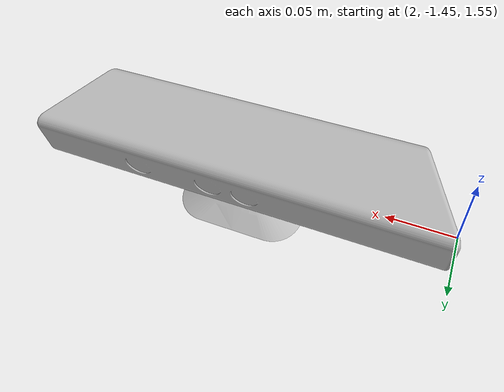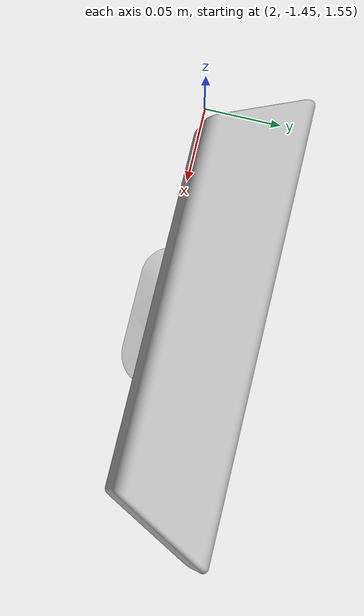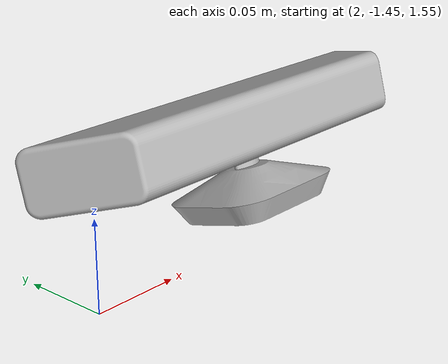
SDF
<?xml version="1.0" ?>
<sdf version="1.5">
  <model name="kinect">
    <pose>2.143572 -1.385330 1.598475 0 0.261799 1.570801</pose>
    <static>true</static>
    <link name="kinekt_link">
      <inertial>
        <mass>0.1</mass>
      </inertial>
      <collision name="collision">
        <geometry>
          <box>
            <size>0.073000 0.276000 0.072000</size>
          </box>
        </geometry>
      </collision>
      <visual name="visual">
        <geometry>
          <mesh>
            <uri>model://kinect/meshes/kinect.dae</uri>
          </mesh>
        </geometry>
      </visual>
      <sensor name="camera" type="depth">
        <update_rate>20</update_rate>
        <camera>
          <horizontal_fov>1.047198</horizontal_fov>
          <image>
            <width>640</width>
            <height>480</height>
            <format>R8G8B8</format>
          </image>
          <clip>
            <near>0.05</near>
            <far>3</far>
          </clip>
        </camera>
        <plugin name="camera_plugin" filename="libgazebo_ros_openni_kinect.so">
          <baseline>0.2</baseline>
          <alwaysOn>true</alwaysOn>
          <updateRate>0.0</updateRate>
          <cameraName>camera_ir</cameraName>
          <imageTopicName>/camera/color/image_raw</imageTopicName>
          <cameraInfoTopicName>/camera/color/camera_info</cameraInfoTopicName>
          <depthImageTopicName>/camera/depth/image_raw</depthImageTopicName>
          <depthImageCameraInfoTopicName>/camera/depth/camera_info</depthImageCameraInfoTopicName>
          <pointCloudTopicName>/camera/depth/points</pointCloudTopicName>
          <frameName>/camera_link</frameName>
          <pointCloudCutoff>0.5</pointCloudCutoff>
          <pointCloudCutoffMax>3.0</pointCloudCutoffMax>
          <distortionK1>0</distortionK1>
          <distortionK2>0</distortionK2>
          <distortionK3>0</distortionK3>
          <distortionT1>0</distortionT1>
          <distortionT2>0</distortionT2>
          <CxPrime>0</CxPrime>
          <Cx>0</Cx>
          <Cy>0</Cy>
          <focalLength>0</focalLength>
          <hackBaseline>0</hackBaseline>
        </plugin>
      </sensor>
    </link>
  </model>
</sdf>
